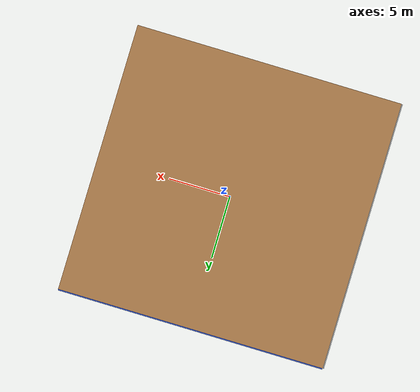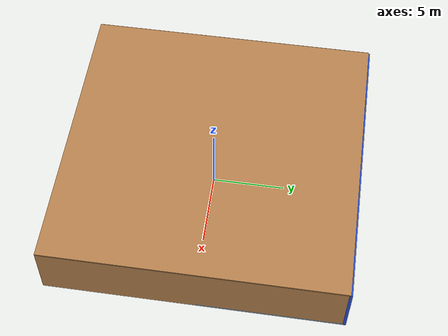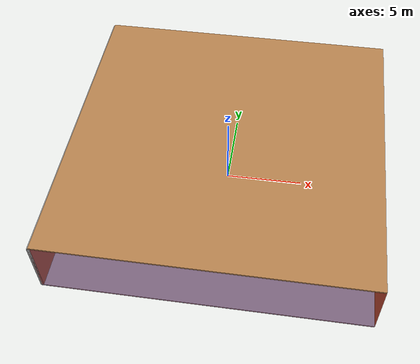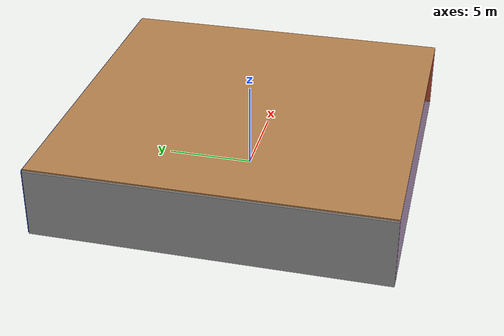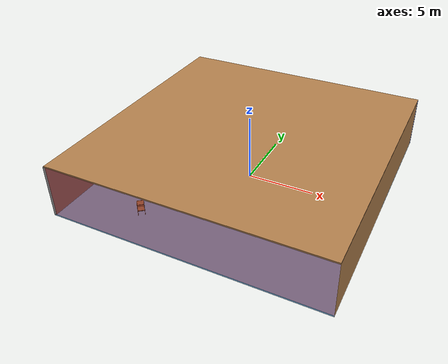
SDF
<sdf version="1.4">
 <world name="default">
  <physics type="ode">
   <max_step_size>0.001</max_step_size>
   <real_time_factor>1</real_time_factor>
   <real_time_update_rate>1000</real_time_update_rate>
   <gravity>0 0 -9.8</gravity>
  </physics>
  <scene><ambient>0.4 0.4 0.4 1</ambient><background>0.7 0.7 0.7 1</background><shadows>1</shadows></scene>
  <model name="Surrounding">
   <static>1</static>
   <link name="Ceiling">
    <collision name="Ceiling_Collision"><geometry><box><size>20 20 0.1</size></box></geometry></collision>
    <visual name="Ceiling_Visual">
     <geometry><box><size>20 20 0.1</size></box></geometry>
     <material>
      <script><uri>file://media/materials/scripts/gazebo.material</uri><name>Gazebo/Wood</name></script>
     </material>
    </visual>
    <pose>0 0 4.05 0 0 0</pose>
   </link>
   <link name="Wall_South">
    <collision name="Wall_South_Collision">
     <geometry><box><size>20 0 4</size></box></geometry>
     <pose>0 0 2 0 -0 0</pose>
    </collision>
    <visual name="Wall_South_Visual">
     <pose>0 0 2 0 -0 0</pose>
     <geometry><box><size>20 0 4</size></box></geometry>
     <material>
      <script><uri>file://media/materials/scripts/gazebo.material</uri><name>Gazebo/RedTransparent</name></script>
     </material>
    </visual>
    <velocity_decay><linear>0</linear><angular>0</angular></velocity_decay>
    <pose>0 -10 0 0 -0 0</pose>
   </link>
   <link name="Wall_East">
    <collision name="Wall_21_Collision">
     <geometry><box><size>20 0 4</size></box></geometry>
     <pose>0 0 2 0 -0 0</pose>
    </collision>
    <visual name="Wall_21_Visual">
     <pose>0 0 2 0 -0 0</pose>
     <geometry><box><size>20 0 4</size></box></geometry>
     <material>
      <script><uri>file://media/materials/scripts/gazebo.material</uri><name>Gazebo/Wood</name></script>
     </material>
    </visual>
    <velocity_decay><linear>0</linear><angular>0</angular></velocity_decay>
    <pose>10 0 0 0 -0 1.5708</pose>
   </link>
   <link name="Wall_North">
    <collision name="Wall_22_Collision">
     <geometry><box><size>20 0.2 4</size></box></geometry>
     <pose>0 0 2 0 -0 0</pose>
    </collision>
    <visual name="Wall_22_Visual">
     <pose>0 0 2 0 -0 0</pose>
     <geometry><box><size>20 0.2 4</size></box></geometry>
     <material>
      <script><uri>file://media/materials/scripts/gazebo.material</uri><name>Gazebo/Blue</name></script>
     </material>
    </visual>
    <velocity_decay><linear>0</linear><angular>0</angular></velocity_decay>
    <pose>0 10 0 0 -0 0</pose>
   </link>
   <link name="Wall_West">
    <collision name="Wall_23_Collision">
     <geometry><box><size>20 0.2 4</size></box></geometry>
     <pose>0 0 2 0 -0 0</pose>
    </collision>
    <visual name="Wall_23_Visual">
     <pose>0 0 2 0 -0 0</pose>
     <geometry><box><size>20 0.2 4</size></box></geometry>
     <material>
      <script><uri>file://media/materials/scripts/gazebo.material</uri><name>Gazebo/Grey</name></script>
     </material>
    </visual>
    <velocity_decay><linear>0</linear><angular>0</angular></velocity_decay>
    <pose>-10 0 0 0 0 -1.5708</pose>
   </link>
   <link name="Ground_link">
    <collision name="collision">
     <pose>0 0 .05 0 -0 0</pose>
     <geometry><box><size>20 20 0.1</size></box></geometry>
    </collision>
    <visual name="visual">
     <pose>0 0 .05 0 -0 0</pose>
     <geometry><box><size>20 20 0.1</size></box></geometry>
     <material>
      <script><uri>file://media/materials/scripts/gazebo.material</uri><name>Gazebo/SkyBlue</name></script>
     </material>
    </visual>
   </link>
   <static>1</static>
  </model>
  <spherical_coordinates>
   <surface_model>EARTH_WGS84</surface_model>
   <latitude_deg>0</latitude_deg>
   <longitude_deg>0</longitude_deg>
   <elevation>0</elevation>
   <heading_deg>0</heading_deg>
  </spherical_coordinates>
  <light name="lightball_0" type="diffuse">
   <diffuse>0.8 0.8 0.8 1</diffuse>
   <specular>0.2 0.2 0.2 1</specular>
   <attenuation>
    <range>100</range>
    <constant>0.7</constant>
    <linear>0.01</linear>
    <quadratic>0.001</quadratic>
   </attenuation>
   <direction>-0.5 0.1 -0.9</direction>
   <pose>5.10608638983 8.07982429828 3.47292786499 0 0 0</pose>
  </light>
  <light name="lightball_1" type="diffuse">
   <diffuse>0.8 0.8 0.8 1</diffuse>
   <specular>0.2 0.2 0.2 1</specular>
   <attenuation>
    <range>100</range>
    <constant>0.7</constant>
    <linear>0.01</linear>
    <quadratic>0.001</quadratic>
   </attenuation>
   <direction>-0.5 0.1 -0.9</direction>
   <pose>-9.53405727789 8.00749466915 3.06932976701 0 0 0</pose>
  </light>
  <light name="lightball_2" type="diffuse">
   <diffuse>0.8 0.8 0.8 1</diffuse>
   <specular>0.2 0.2 0.2 1</specular>
   <attenuation>
    <range>100</range>
    <constant>0.7</constant>
    <linear>0.01</linear>
    <quadratic>0.001</quadratic>
   </attenuation>
   <direction>-0.5 0.1 -0.9</direction>
   <pose>4.29233796627 -1.74144527008 2.20841248115 0 0 0</pose>
  </light>
  <light name="lightball_3" type="diffuse">
   <diffuse>0.8 0.8 0.8 1</diffuse>
   <specular>0.2 0.2 0.2 1</specular>
   <attenuation>
    <range>100</range>
    <constant>0.7</constant>
    <linear>0.01</linear>
    <quadratic>0.001</quadratic>
   </attenuation>
   <direction>-0.5 0.1 -0.9</direction>
   <pose>3.78463581906 -6.10210203984 3.34997261002 0 0 0</pose>
  </light>
  <include><uri>model://table</uri><pose>-7.47151041786 -1.47855137258 0 0 0 1.82457857495</pose></include>
  <include><uri>model://cabinet</uri><pose>-4.73301153563 -7.33322849505 0 0 0 2.2565861604</pose></include>
  <include><uri>model://table</uri><pose>1.42857552326 -1.9185339941 0 0 0 1.4737880589</pose></include>
  <include><uri>model://table</uri><pose>4.56325948574 -1.89833035288 0 0 0 0.468595132431</pose></include>
  <include>
   <uri>model://robocup_3Dsim_goal</uri>
   <pose>5.16727803978 8.14470924797 0 0 0 2.07468310437</pose>
  </include>
 </world>
</sdf>

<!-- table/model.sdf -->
<sdf version="1.5">
  <model name="table">
    <static>true</static>
    <link name="link">
      <collision name="surface">
        <pose>0 0 1.0 0 0 0</pose>
        <geometry>
          <box>
            <size>1.5 0.8 0.03</size>
          </box>
        </geometry>
        <surface>
          <friction>
            <ode>
              <mu>0.6</mu>
              <mu2>0.6</mu2>
            </ode>
          </friction>
        </surface>
      </collision>
      <visual name="visual1">
        <pose>0 0 1.0 0 0 0</pose>
        <geometry>
          <box>
            <size>1.5 0.8 0.03</size>
          </box>
        </geometry>
        <material>
          <script>
            <uri>model://media/materials/scripts/gazebo.material</uri>
            <name>Gazebo/Wood</name>
          </script>
        </material>
      </visual>
      <collision name="front_left_leg">
        <pose>0.68 0.38 0.5 0 0 0</pose>
        <geometry>
          <cylinder>
            <radius>0.02</radius>
            <length>1.0</length>
          </cylinder>
        </geometry>
      </collision>
      <visual name="front_left_leg">
        <pose>0.68 0.38 0.5 0 0 0</pose>
        <geometry>
          <cylinder>
            <radius>0.02</radius>
            <length>1.0</length>
          </cylinder>
        </geometry>
        <material>
          <script>
            <uri>model://media/materials/scripts/gazebo.material</uri>
            <name>Gazebo/Grey</name>
          </script>
        </material>
      </visual>
      <collision name="front_right_leg">
        <pose>0.68 -0.38 0.5 0 0 0</pose>
        <geometry>
          <cylinder>
            <radius>0.02</radius>
            <length>1.0</length>
          </cylinder>
        </geometry>
      </collision>
      <visual name="front_right_leg">
        <pose>0.68 -0.38 0.5 0 0 0</pose>
        <geometry>
          <cylinder>
            <radius>0.02</radius>
            <length>1.0</length>
          </cylinder>
        </geometry>
        <material>
          <script>
            <uri>model://media/materials/scripts/gazebo.material</uri>
            <name>Gazebo/Grey</name>
          </script>
        </material>
      </visual>
      <collision name="back_right_leg">
        <pose>-0.68 -0.38 0.5 0 0 0</pose>
        <geometry>
          <cylinder>
            <radius>0.02</radius>
            <length>1.0</length>
          </cylinder>
        </geometry>
      </collision>
      <visual name="back_right_leg">
        <pose>-0.68 -0.38 0.5 0 0 0</pose>
        <geometry>
          <cylinder>
            <radius>0.02</radius>
            <length>1.0</length>
          </cylinder>
        </geometry>
        <material>
          <script>
            <uri>model://media/materials/scripts/gazebo.material</uri>
            <name>Gazebo/Grey</name>
          </script>
        </material>
      </visual>
      <collision name="back_left_leg">
        <pose>-0.68 0.38 0.5 0 0 0</pose>
        <geometry>
          <cylinder>
            <radius>0.02</radius>
            <length>1.0</length>
          </cylinder>
        </geometry>
      </collision>
      <visual name="back_left_leg">
        <pose>-0.68 0.38 0.5 0 0 0</pose>
        <geometry>
          <cylinder>
            <radius>0.02</radius>
            <length>1.0</length>
          </cylinder>
        </geometry>
        <material>
          <script>
            <uri>model://media/materials/scripts/gazebo.material</uri>
            <name>Gazebo/Grey</name>
          </script>
        </material>
      </visual>
    </link>
  </model>
</sdf>

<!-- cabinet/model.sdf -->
<sdf version="1.5">
  <model name="cabinet">
    <static>true</static>
    <link name="cabinet_bottom_plate">
      <inertial>
        <pose>0 0 -1 0 0 0</pose>
        <inertia>
          <ixx>2.050000</ixx>
          <ixy>0</ixy>
          <ixz>0</ixz>
          <iyy>2.050000</iyy>
          <iyz>0</iyz>
          <izz>2.050000</izz>
        </inertia>
        <mass>25.000000</mass>
      </inertial>
      <collision name="cabinet_bottom_plate_geom">
        <pose>0 0 0.010000 0 0 0</pose>
        <geometry>
          <box>
            <size>0.450000 0.450000 0.020000</size>
          </box>
        </geometry>
      </collision>
      <visual name="cabinet_bottom_plate_geom_visual">
        <pose>0 0 0.010000 0 0 0</pose>
        <geometry>
          <box>
            <size>0.450000 0.450000 0.020000</size>
          </box>
        </geometry>
        <material>
          <script>
            <uri>model://media/materials/scripts/gazebo.material</uri>
            <name>Gazebo/Wood</name>
          </script>
        </material>
      </visual>
      <collision name="cabinet_bottom_plate_geom_cabinet_back_plate">
        <pose>0.235000 0 0.510000 0 0 0</pose>
        <geometry>
          <box>
            <size>0.020000 0.450000 1.020000</size>
          </box>
        </geometry>
      </collision>
      <visual name="cabinet_bottom_plate_geom_cabinet_back_plate_visual">
        <pose>0.235000 0 0.510000 0 0 0</pose>
        <geometry>
          <box>
            <size>0.020000 0.450000 1.020000</size>
          </box>
        </geometry>
        <material>
          <script>
            <uri>model://media/materials/scripts/gazebo.material</uri>
            <name>Gazebo/Wood</name>
          </script>
        </material>
      </visual>
      <collision name="cabinet_bottom_plate_geom_cabinet_left_plate">
        <pose>0 0.235000 0.510000 0 0 0</pose>
        <geometry>
          <box>
            <size>0.450000 0.020000 1.020000</size>
          </box>
        </geometry>
      </collision>
      <visual name="cabinet_bottom_plate_geom_cabinet_left_plate_visual">
        <pose>0 0.235000 0.510000 0 0 0</pose>
        <geometry>
          <box>
            <size>0.450000 0.020000 1.020000</size>
          </box>
        </geometry>
        <material>
          <script>
            <uri>model://media/materials/scripts/gazebo.material</uri>
            <name>Gazebo/Wood</name>
          </script>
        </material>
      </visual>
      <collision name="cabinet_bottom_plate_geom_cabinet_middle_plate">
        <pose>0 0 0.510000 0 0 0</pose>
        <geometry>
          <box>
            <size>0.450000 0.450000 0.020000</size>
          </box>
        </geometry>
      </collision>
      <visual name="cabinet_bottom_plate_geom_cabinet_middle_plate_visual">
        <pose>0 0 0.510000 0 0 0</pose>
        <geometry>
          <box>
            <size>0.450000 0.450000 0.020000</size>
          </box>
        </geometry>
        <material>
          <script>
            <uri>model://media/materials/scripts/gazebo.material</uri>
            <name>Gazebo/Wood</name>
          </script>
        </material>
      </visual>
      <collision name="cabinet_bottom_plate_geom_cabinet_right_plate">
        <pose>0 -0.235000 0.510000 0 0 0</pose>
        <geometry>
          <box>
            <size>0.450000 0.020000 1.020000</size>
          </box>
        </geometry>
      </collision>
      <visual name="cabinet_bottom_plate_geom_cabinet_right_plate_visual">
        <pose>0 -0.235000 0.510000 0 0 0</pose>
        <geometry>
          <box>
            <size>0.450000 0.020000 1.020000</size>
          </box>
        </geometry>
        <material>
          <script>
            <uri>model://media/materials/scripts/gazebo.material</uri>
            <name>Gazebo/Wood</name>
          </script>
        </material>
      </visual>
      <collision name="cabinet_bottom_plate_geom_cabinet_top_plate">
        <pose>0 0 1.010000 0 0 0</pose>
        <geometry>
          <box>
            <size>0.450000 0.450000 0.020000</size>
          </box>
        </geometry>
      </collision>
      <visual name="cabinet_bottom_plate_geom_cabinet_top_plate_visual">
        <pose>0 0 1.010000 0 0 0</pose>
        <geometry>
          <box>
            <size>0.450000 0.450000 0.020000</size>
          </box>
        </geometry>
        <material>
          <script>
            <uri>model://media/materials/scripts/gazebo.material</uri>
            <name>Gazebo/Wood</name>
          </script>
        </material>
      </visual>
    </link>
  </model>
</sdf>

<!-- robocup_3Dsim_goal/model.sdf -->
<sdf version="1.5">
  <model name="robocup_3d_goal">
    <static>true</static>
    <link name="left_post">
      <pose>0 1.05 0.45 0 0 0</pose>
      <collision name="collision">
        <geometry>
          <cylinder>
            <radius>0.05</radius>
            <length>0.9</length>
          </cylinder>
        </geometry>
      </collision>
      <visual name="visual">
        <geometry>
          <cylinder>
            <radius>0.05</radius>
            <length>0.9</length>
          </cylinder>
        </geometry>
        <material>
          <script>
            <uri>file://media/materials/scripts/gazebo.material</uri>
            <name>Gazebo/ZincYellow</name>
          </script>
        </material>
      </visual>
    </link>
    <link name="left_support_horiz_lower">
      <pose>0.30 1.05 0.01 0 0 0</pose>
      <collision name="collision">
        <geometry>
          <box>
            <size>0.50 0.02 0.02</size>
          </box>
        </geometry>
      </collision>
      <visual name="visual">
        <geometry>
          <box>
            <size>0.50 0.02 0.02</size>
          </box>
        </geometry>
        <material>
          <script>
            <uri>file://media/materials/scripts/gazebo.material</uri>
            <name>Gazebo/White</name>
          </script>
        </material>
      </visual>
    </link>
    <link name="left_support_horiz_upper">
      <pose>0.30 1.05 0.79 0 0 0</pose>
      <collision name="collision">
        <geometry>
          <box>
            <size>0.50 0.02 0.02</size>
          </box>
        </geometry>
      </collision>
      <visual name="visual">
        <geometry>
          <box>
            <size>0.50 0.02 0.02</size>
          </box>
        </geometry>
        <material>
          <script>
            <uri>file://media/materials/scripts/gazebo.material</uri>
            <name>Gazebo/White</name>
          </script>
        </material>
      </visual>
    </link>
    <link name="left_support_vertical">
      <pose>0.56 1.05 0.4 0 1.5708 0</pose>
      <collision name="collision">
        <geometry>
          <box>
            <size>0.80 0.02 0.02</size>
          </box>
        </geometry>
      </collision>
      <visual name="visual">
        <geometry>
          <box>
            <size>0.80 0.02 0.02</size>
          </box>
        </geometry>
        <material>
          <script>
            <uri>file://media/materials/scripts/gazebo.material</uri>
            <name>Gazebo/White</name>
          </script>
        </material>
      </visual>
    </link>
    <link name="right_support_horiz_lower">
      <pose>0.30 -1.05 0.01 0 0 0</pose>
      <collision name="collision">
        <geometry>
          <box>
            <size>0.50 0.02 0.02</size>
          </box>
        </geometry>
      </collision>
      <visual name="visual">
        <geometry>
          <box>
            <size>0.50 0.02 0.02</size>
          </box>
        </geometry>
        <material>
          <script>
            <uri>file://media/materials/scripts/gazebo.material</uri>
            <name>Gazebo/White</name>
          </script>
        </material>
      </visual>
    </link>
    <link name="right_support_horiz_upper">
      <pose>0.30 -1.05 0.79 0 0 0</pose>
      <collision name="collision">
        <geometry>
          <box>
            <size>0.50 0.02 0.02</size>
          </box>
        </geometry>
      </collision>
      <visual name="visual">
        <geometry>
          <box>
            <size>0.50 0.02 0.02</size>
          </box>
        </geometry>
        <material>
          <script>
            <uri>file://media/materials/scripts/gazebo.material</uri>
            <name>Gazebo/White</name>
          </script>
        </material>
      </visual>
    </link>
    <link name="right_support_vertical">
      <pose>0.56 -1.05 0.4 0 1.5708 0</pose>
      <collision name="collision">
        <geometry>
          <box>
            <size>0.80 0.02 0.02</size>
          </box>
        </geometry>
      </collision>
      <visual name="visual">
        <geometry>
          <box>
            <size>0.80 0.02 0.02</size>
          </box>
        </geometry>
        <material>
          <script>
            <uri>file://media/materials/scripts/gazebo.material</uri>
            <name>Gazebo/White</name>
          </script>
        </material>
      </visual>
    </link>
    <link name="center_support_horiz_lower">
      <pose>0.56 0 0.01 0 1.5708 0</pose>
      <collision name="collision">
        <geometry>
          <box>
            <size>0.02 2.08 0.02</size>
          </box>
        </geometry>
      </collision>
      <visual name="visual">
        <geometry>
          <box>
            <size>0.02 2.08 0.02</size>
          </box>
        </geometry>
        <material>
          <script>
            <uri>file://media/materials/scripts/gazebo.material</uri>
            <name>Gazebo/White</name>
          </script>
        </material>
      </visual>
    </link>
    <link name="center_support_horiz_upper">
      <pose>0.56 0 0.79 0 1.5708 0</pose>
      <collision name="collision">
        <geometry>
          <box>
            <size>0.02 2.08 0.02</size>
          </box>
        </geometry>
      </collision>
      <visual name="visual">
        <geometry>
          <box>
            <size>0.02 2.08 0.02</size>
          </box>
        </geometry>
        <material>
          <script>
            <uri>file://media/materials/scripts/gazebo.material</uri>
            <name>Gazebo/White</name>
          </script>
        </material>
      </visual>
    </link>
    <link name="right_post">
      <pose>0 -1.05 0.45 0 0 0</pose>
      <collision name="collision">
        <geometry>
          <cylinder>
            <radius>0.05</radius>
            <length>0.9</length>
          </cylinder>
        </geometry>
      </collision>
      <visual name="visual">
        <geometry>
          <cylinder>
            <radius>0.05</radius>
            <length>0.9</length>
          </cylinder>
        </geometry>
        <material>
          <script>
            <uri>file://media/materials/scripts/gazebo.material</uri>
            <name>Gazebo/ZincYellow</name>
          </script>
        </material>
      </visual>
    </link>
    <link name="crossbar">
      <pose>0 0 0.85 1.57 1.57 0</pose>
      <collision name="collision">
        <geometry>
          <cylinder>
            <radius>0.05</radius>
            <length>2.0</length>
          </cylinder>
        </geometry>
      </collision>
      <visual name="visual">
        <geometry>
          <cylinder>
            <radius>0.05</radius>
            <length>2.0</length>
          </cylinder>
        </geometry>
        <material>
          <script>
            <uri>file://media/materials/scripts/gazebo.material</uri>
            <name>Gazebo/ZincYellow</name>
          </script>
        </material>
      </visual>
    </link>
    <link name="center_net">
      <pose>0.56 0 0.40 0 0 0</pose>
      <collision name="collision">
        <geometry>
          <box>
            <size>0.01 2.1 0.80</size>
          </box>
        </geometry>
      </collision>
      <visual name="visual">
        <geometry>
          <box>
            <size>0.01 2.1 0.80</size>
          </box>
        </geometry>
        <material>
          <script>
            <uri>model://../model_source/models/robocup09_spl_field/materials/scripts/</uri>
            <uri>model://../model_source/models/robocup09_spl_field/materials/textures/</uri>
            <name>RoboCup/Net</name>
          </script>
        </material>
      </visual>
    </link>
    <link name="left_net">
      <pose>0.30 1.05 0.40 0 0 0</pose>
      <collision name="collision">
        <geometry>
          <box>
            <size>0.50 0.01 0.76</size>
          </box>
        </geometry>
      </collision>
      <visual name="visual">
        <geometry>
          <box>
            <size>0.50 0.01 0.76</size>
          </box>
        </geometry>
        <material>
          <script>
            <uri>model://../model_source/models/robocup09_spl_field/materials/scripts/</uri>
            <uri>model://../model_source/models/robocup09_spl_field/materials/textures/</uri>
            <name>RoboCup/Net</name>
          </script>
        </material>
      </visual>
    </link>
    <link name="right_net">
      <pose>0.30 -1.05 0.40 0 0 0</pose>
      <collision name="collision">
        <geometry>
          <box>
            <size>0.50 0.01 0.76</size>
          </box>
        </geometry>
      </collision>
      <visual name="visual">
        <geometry>
          <box>
            <size>0.50 0.01 0.76</size>
          </box>
        </geometry>
        <material>
          <script>
            <uri>model://../model_source/models/robocup09_spl_field/materials/scripts/</uri>
            <uri>model://../model_source/models/robocup09_spl_field/materials/textures/</uri>
            <name>RoboCup/Net</name>
          </script>
        </material>
      </visual>
    </link>
  </model>
</sdf>
